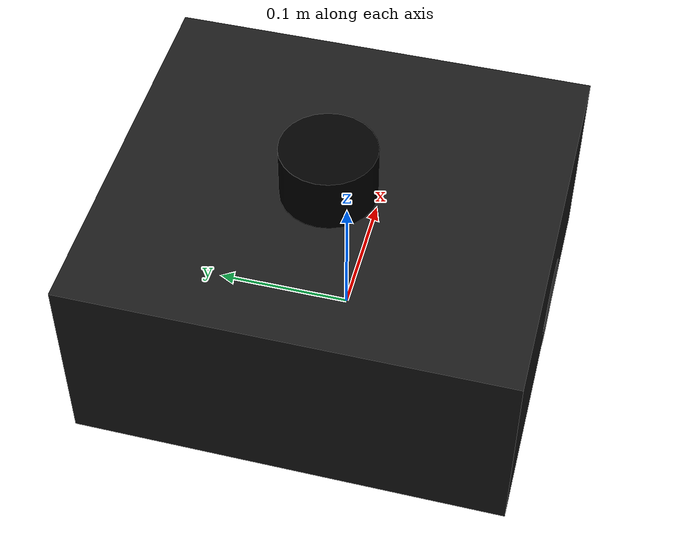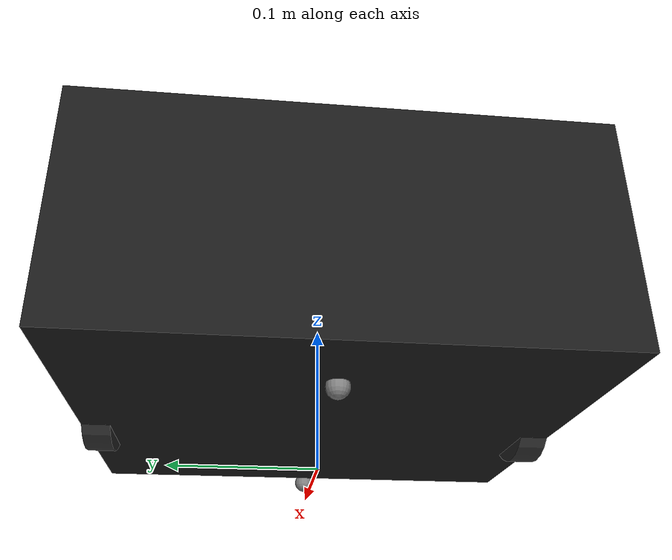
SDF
<?xml version="1.0"?>
<sdf version="1.9">
  <model name="turtlebot3_waffle">
    <pose>0 0 0.01 0 0 0</pose>

    <!-- Base Footprint -->
    <link name="base_footprint"/>

    <!-- Base Link (Main Body) -->
    <link name="base_link">
      <pose>-0.032 0 0.08 0 0 0</pose>
      <inertial>
        <mass>1.3729096</mass>
        <inertia>
          <ixx>0.008</ixx>
          <iyy>0.008</iyy>
          <izz>0.01</izz>
        </inertia>
      </inertial>

      <visual name="base_visual">
        <geometry>
          <box>
            <size>0.281 0.306 0.141</size>
          </box>
        </geometry>
        <material>
          <ambient>0.1 0.1 0.1 1</ambient>
          <diffuse>0.1 0.1 0.1 1</diffuse>
        </material>
      </visual>

      <collision name="base_collision">
        <geometry>
          <box>
            <size>0.281 0.306 0.141</size>
          </box>
        </geometry>
      </collision>
    </link>

    <!-- Left Wheel -->
    <link name="wheel_left_link">
      <pose>0 0.144 0.033 -1.57 0 0</pose>
      <inertial>
        <mass>0.284</mass>
        <inertia>
          <ixx>0.00025</ixx>
          <iyy>0.00025</iyy>
          <izz>0.0004</izz>
        </inertia>
      </inertial>

      <visual name="wheel_left_visual">
        <geometry>
          <cylinder>
            <radius>0.033</radius>
            <length>0.018</length>
          </cylinder>
        </geometry>
        <material>
          <ambient>0.2 0.2 0.2 1</ambient>
          <diffuse>0.2 0.2 0.2 1</diffuse>
        </material>
      </visual>

      <collision name="wheel_left_collision">
        <geometry>
          <cylinder>
            <radius>0.033</radius>
            <length>0.018</length>
          </cylinder>
        </geometry>
        <surface>
          <friction>
            <ode>
              <mu>100</mu>
              <mu2>100</mu2>
            </ode>
          </friction>
        </surface>
      </collision>
    </link>

    <!-- Right Wheel -->
    <link name="wheel_right_link">
      <pose>0 -0.144 0.033 -1.57 0 0</pose>
      <inertial>
        <mass>0.284</mass>
        <inertia>
          <ixx>0.00025</ixx>
          <iyy>0.00025</iyy>
          <izz>0.0004</izz>
        </inertia>
      </inertial>

      <visual name="wheel_right_visual">
        <geometry>
          <cylinder>
            <radius>0.033</radius>
            <length>0.018</length>
          </cylinder>
        </geometry>
        <material>
          <ambient>0.2 0.2 0.2 1</ambient>
          <diffuse>0.2 0.2 0.2 1</diffuse>
        </material>
      </visual>

      <collision name="wheel_right_collision">
        <geometry>
          <cylinder>
            <radius>0.033</radius>
            <length>0.018</length>
          </cylinder>
        </geometry>
        <surface>
          <friction>
            <ode>
              <mu>100</mu>
              <mu2>100</mu2>
            </ode>
          </friction>
        </surface>
      </collision>
    </link>

    <!-- Front Caster -->
    <link name="caster_front_link">
      <pose>0.115 0 0.007 0 0 0</pose>
      <inertial>
        <mass>0.001</mass>
        <inertia>
          <ixx>0.00001</ixx>
          <iyy>0.00001</iyy>
          <izz>0.00001</izz>
        </inertia>
      </inertial>

      <visual name="caster_visual">
        <geometry>
          <sphere>
            <radius>0.007</radius>
          </sphere>
        </geometry>
        <material>
          <ambient>0.5 0.5 0.5 1</ambient>
          <diffuse>0.5 0.5 0.5 1</diffuse>
        </material>
      </visual>

      <collision name="caster_collision">
        <geometry>
          <sphere>
            <radius>0.007</radius>
          </sphere>
        </geometry>
        <surface>
          <friction>
            <ode>
              <mu>0.01</mu>
              <mu2>0.01</mu2>
            </ode>
          </friction>
        </surface>
      </collision>
    </link>

    <!-- Rear Caster -->
    <link name="caster_rear_link">
      <pose>-0.115 0 0.007 0 0 0</pose>
      <inertial>
        <mass>0.001</mass>
        <inertia>
          <ixx>0.00001</ixx>
          <iyy>0.00001</iyy>
          <izz>0.00001</izz>
        </inertia>
      </inertial>

      <visual name="caster_visual">
        <geometry>
          <sphere>
            <radius>0.007</radius>
          </sphere>
        </geometry>
        <material>
          <ambient>0.5 0.5 0.5 1</ambient>
          <diffuse>0.5 0.5 0.5 1</diffuse>
        </material>
      </visual>

      <collision name="caster_collision">
        <geometry>
          <sphere>
            <radius>0.007</radius>
          </sphere>
        </geometry>
        <surface>
          <friction>
            <ode>
              <mu>0.01</mu>
              <mu2>0.01</mu2>
            </ode>
          </friction>
        </surface>
      </collision>
    </link>

    <!-- LiDAR -->
    <link name="scan_link">
      <pose>-0.052 0 0.183 0 0 0</pose>
      <inertial>
        <mass>0.125</mass>
        <inertia>
          <ixx>0.001</ixx>
          <iyy>0.001</iyy>
          <izz>0.001</izz>
        </inertia>
      </inertial>

      <visual name="lidar_visual">
        <geometry>
          <cylinder>
            <radius>0.033</radius>
            <length>0.040</length>
          </cylinder>
        </geometry>
        <material>
          <ambient>0.0 0.0 0.0 1</ambient>
          <diffuse>0.0 0.0 0.0 1</diffuse>
        </material>
      </visual>

      <collision name="lidar_collision">
        <geometry>
          <cylinder>
            <radius>0.033</radius>
            <length>0.040</length>
          </cylinder>
        </geometry>
      </collision>

      <sensor name="lidar" type="gpu_lidar">
        <always_on>true</always_on>
        <update_rate>5</update_rate>
        <lidar>
          <scan>
            <horizontal>
              <samples>360</samples>
              <resolution>1.0</resolution>
              <min_angle>0.0</min_angle>
              <max_angle>6.28</max_angle>
            </horizontal>
          </scan>
          <range>
            <min>0.120</min>
            <max>3.5</max>
            <resolution>0.015</resolution>
          </range>
          <noise>
            <type>gaussian</type>
            <mean>0.0</mean>
            <stddev>0.01</stddev>
          </noise>
        </lidar>
        <topic>scan</topic>
      </sensor>
    </link>

    <!-- Joints -->
    <joint name="base_footprint_joint" type="fixed">
      <parent>base_footprint</parent>
      <child>base_link</child>
    </joint>

    <joint name="wheel_left_joint" type="revolute">
      <parent>base_link</parent>
      <child>wheel_left_link</child>
      <axis>
        <xyz>0 0 1</xyz>
      </axis>
    </joint>

    <joint name="wheel_right_joint" type="revolute">
      <parent>base_link</parent>
      <child>wheel_right_link</child>
      <axis>
        <xyz>0 0 1</xyz>
      </axis>
    </joint>

    <joint name="caster_front_joint" type="fixed">
      <parent>base_link</parent>
      <child>caster_front_link</child>
    </joint>

    <joint name="caster_rear_joint" type="fixed">
      <parent>base_link</parent>
      <child>caster_rear_link</child>
    </joint>

    <joint name="scan_joint" type="fixed">
      <parent>base_link</parent>
      <child>scan_link</child>
    </joint>

    <!-- Differential Drive Plugin -->
    <plugin filename="gz-sim-diff-drive-system" name="gz::sim::systems::DiffDrive">
      <left_joint>wheel_left_joint</left_joint>
      <right_joint>wheel_right_joint</right_joint>
      <wheel_separation>0.288</wheel_separation>
      <wheel_radius>0.033</wheel_radius>
      <max_linear_acceleration>1.0</max_linear_acceleration>
      <max_angular_acceleration>2.0</max_angular_acceleration>
      <topic>cmd_vel</topic>
      <odom_topic>odom</odom_topic>
      <tf_topic>tf</tf_topic>
      <frame_id>odom</frame_id>
      <child_frame_id>base_footprint</child_frame_id>
      <odom_publish_frequency>30</odom_publish_frequency>
    </plugin>

    <!-- IMU Sensor -->
    <plugin filename="gz-sim-imu-system" name="gz::sim::systems::Imu">
      <initial_orientation_as_reference>false</initial_orientation_as_reference>
    </plugin>

    <plugin filename="gz-sim-sensors-system" name="gz::sim::systems::Sensors">
      <render_engine>ogre2</render_engine>
    </plugin>

  </model>
</sdf>
